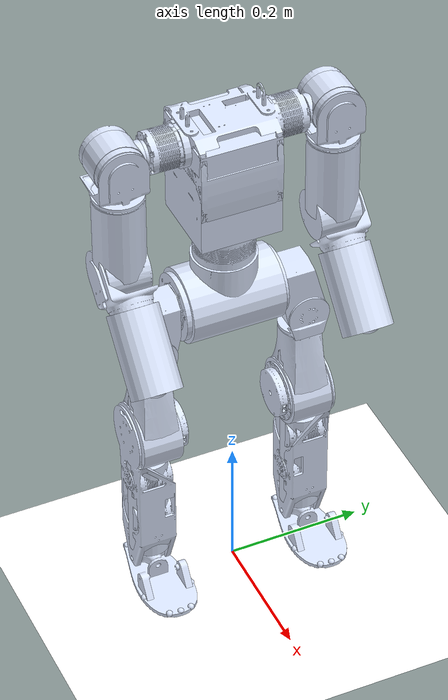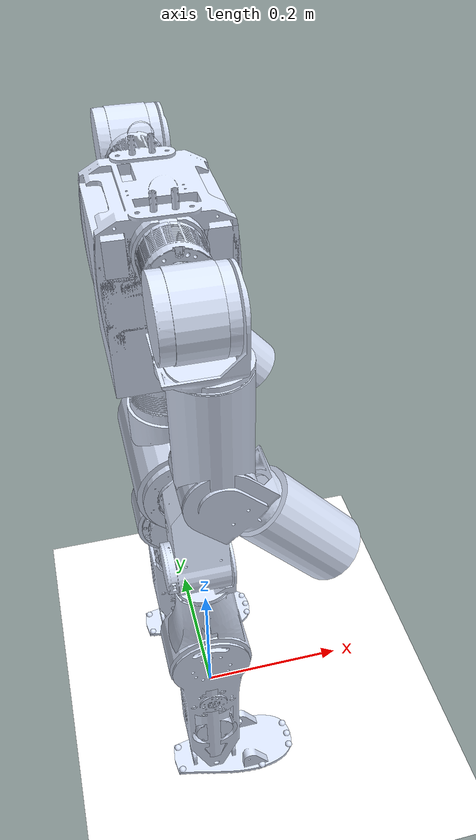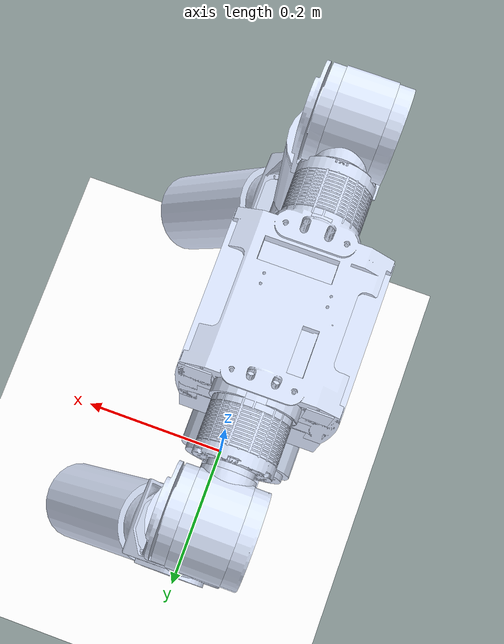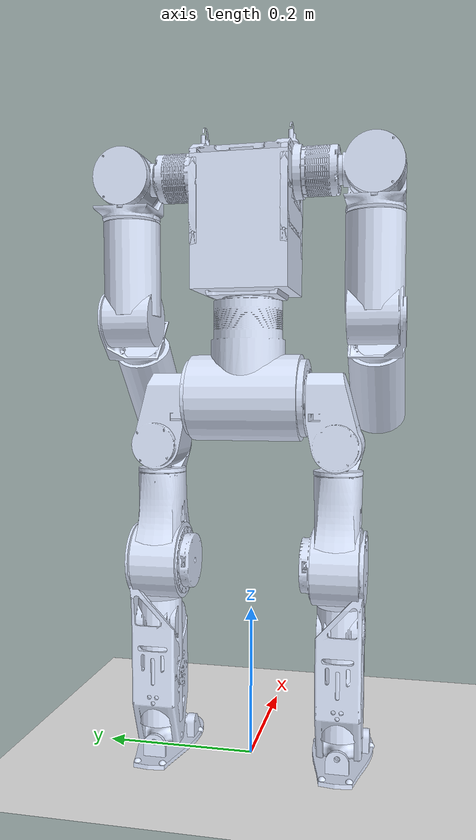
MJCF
<mujoco model="rotaku_xs3">
  <compiler angle="radian" meshdir="../meshes/"/>
  <default>
    <joint damping="0.0001" armature="0.001" frictionloss="0.001"/>
    <default class="collision">
      <geom group="0" rgba="0.2 0.7 0.2 1"/>
    </default>
    <geom condim='4' contype="1" conaffinity="15" solref='0.001 2' friction='1 0 0'/>
  </default>
  <asset>
    <mesh name="pelvis" file="pelvis.STL"/>
    <mesh name="left_hip_pitch_link" file="left_hip_pitch_link.STL"/>
    <mesh name="left_hip_roll_link" file="left_hip_roll_link.STL"/>
    <mesh name="left_hip_yaw_link" file="left_hip_yaw_link.STL"/>
    <mesh name="left_knee_link" file="left_knee_link.STL"/>
    <mesh name="left_ankle_pitch_link" file="left_ankle_pitch_link.STL"/>
    <mesh name="left_ankle_roll_link" file="left_ankle_roll_link.STL"/>
    <mesh name="right_hip_pitch_link" file="right_hip_pitch_link.STL"/>
    <mesh name="right_hip_roll_link" file="right_hip_roll_link.STL"/>
    <mesh name="right_hip_yaw_link" file="right_hip_yaw_link.STL"/>
    <mesh name="right_knee_link" file="right_knee_link.STL"/>
    <mesh name="right_ankle_pitch_link" file="right_ankle_pitch_link.STL"/>
    <mesh name="right_ankle_roll_link" file="right_ankle_roll_link.STL"/>
    <mesh name="torso_link" file="torso_link.STL"/>
    <mesh name="left_shoulder_pitch_link" file="left_shoulder_pitch_link.STL"/>
    <mesh name="left_shoulder_roll_link" file="left_shoulder_roll_link.STL"/>
    <mesh name="left_shoulder_yaw_link" file="left_shoulder_yaw_link.STL"/>
    <mesh name="left_elbow_pitch_link" file="left_elbow_pitch_link.STL"/>
    <mesh name="right_shoulder_pitch_link" file="right_shoulder_pitch_link.STL"/>
    <mesh name="right_shoulder_roll_link" file="right_shoulder_roll_link.STL"/>
    <mesh name="right_shoulder_yaw_link" file="right_shoulder_yaw_link.STL"/>
    <mesh name="right_elbow_pitch_link" file="right_elbow_pitch_link.STL"/>
  </asset>

  <worldbody>
    <body name="pelvis" pos="0 0 0.54">
      <inertial pos="-0.023899 -0.0008558 -0.033825" quat="1 -0.000436294 0.000749209 3.26875e-07" mass="3.4934" diaginertia="0.016599 0.011405 0.010259"/>
      <joint name="floating_base_joint" type="free"/>
      <geom type="mesh" contype="0" conaffinity="0" group="1" density="0" rgba="0.86667 0.9098 1 1" mesh="pelvis"/>
      <geom size="0.055 0.07" pos="-0.023986 0 -0.0589" quat="0.707107 0.707107 0 0" type="cylinder" rgba="0.86667 0.9098 1 1"/>
      <site name="imu" size="0.01" pos="0 0 0"/>
      <body name="left_hip_pitch_link" pos="-0.023986 0.077142 -0.0589">
        <inertial pos="-0.0023949 0.034614 -0.04848" quat="0.710053 0.110004 -0.0566108 0.693195" mass="0.7251" diaginertia="0.000811857 0.000762052 0.000453391"/>
        <joint name="left_hip_pitch_joint" pos="0 0 0" axis="0 1 0" range="-1.3 1.3" actuatorfrcrange="-30 30"/>
        <geom type="mesh" contype="0" conaffinity="0" group="1" density="0" rgba="0.86667 0.9098 1 1" mesh="left_hip_pitch_link"/>
        <geom size="0.02 0.025" pos="0 0.021 0" quat="0.707107 0 0.707107 0" type="cylinder" rgba="0.86667 0.9098 1 1"/>
        <geom size="0.03 0.025" pos="0 0.038 -0.060165" quat="0.707107 0 0.707107 0" type="cylinder" rgba="0.86667 0.9098 1 1"/>
        <body name="left_hip_roll_link" pos="0.0305 0.038 -0.06">
          <inertial pos="-0.014351 3.2e-06 -0.022065" quat="0 0.403965 0 0.914774" mass="0.076044" diaginertia="5.98602e-05 5.06e-05 3.17398e-05"/>
          <joint name="left_hip_roll_joint" pos="0 0 0" axis="1 0 0" range="-0.3 1.2" actuatorfrcrange="-32 32"/>
          <geom type="mesh" contype="0" conaffinity="0" group="1" density="0" rgba="0.86667 0.9098 1 1" mesh="left_hip_roll_link"/>
          <geom size="0.03 0.001" pos="-0.0295 0.00012455 -0.03625" type="cylinder" rgba="0.86667 0.9098 1 1"/>
          <body name="left_hip_yaw_link" pos="-0.0295 0 -0.03625">
            <inertial pos="0.0008347 0.0005241 -0.087465" quat="0.706849 0.0175848 0.010198 0.707072" mass="1.9052" diaginertia="0.00499455 0.00458521 0.00179294"/>
            <joint name="left_hip_yaw_joint" pos="0 0 0" axis="0 0 1" range="-1.5 1.5" actuatorfrcrange="-32 32"/>
            <geom type="mesh" contype="0" conaffinity="0" group="1" density="0" rgba="0.86667 0.9098 1 1" mesh="left_hip_yaw_link"/>
            <geom size="0.03 0.0275" pos="-0.00033095 0 -0.038" type="cylinder" rgba="0.86667 0.9098 1 1"/>
            <geom size="0.05 0.03" pos="-0.00033095 0 -0.118" quat="0.707107 0.707107 0 0" type="cylinder" rgba="0.86667 0.9098 1 1"/>
            <body name="left_knee_link" pos="-0.0007981 0.02925 -0.118">
              <inertial pos="0.0001773 -0.022134 -0.12275" quat="0.689884 -0.0487557 0.0506976 0.720495" mass="1.2923" diaginertia="0.00482754 0.00470026 0.000978103"/>
              <joint name="left_knee_joint" pos="0 0 0" axis="0 1 0" range="-1 1.2" actuatorfrcrange="-30 30"/>
              <geom type="mesh" contype="0" conaffinity="0" group="1" density="0" rgba="0.86667 0.9098 1 1" mesh="left_knee_link"/>
              <geom size="0.03 0.085" pos="-0.0013389 -0.0245 -0.135" type="cylinder" rgba="0.86667 0.9098 1 1"/>
              <body name="left_ankle_pitch_link" pos="0 -0.0245 -0.24">
                <inertial pos="0 0 0" quat="0 0.707107 0 0.707107" mass="0.056535" diaginertia="1.16e-05 9.3e-06 6.1e-06"/>
                <joint name="left_ankle_pitch_joint" pos="0 0 0" axis="0 1 0" range="-0.3 0.3" actuatorfrcrange="-25 25"/>
                <geom type="mesh" contype="0" conaffinity="0" group="1" density="0" rgba="0.86667 0.9098 1 1" mesh="left_ankle_pitch_link"/>
                <geom size="0.005 0.005 0.005" type="box" rgba="0.86667 0.9098 1 1"/>
                <body name="left_ankle_roll_link">
                  <inertial pos="0.033884 0 -0.018481" quat="0 0.70809 0 0.706123" mass="0.22328" diaginertia="0.000479203 0.00039 0.000119697"/>
                  <joint name="left_ankle_roll_joint" pos="0 0 0" axis="1 0 0" range="-0.3 0.3" actuatorfrcrange="-25 25"/>
                  <geom type="mesh" contype="0" conaffinity="0" group="1" density="0" rgba="0.86667 0.9098 1 1" mesh="left_ankle_roll_link"/>
                  <geom size="0.005" pos="-0.047 0.017 -0.021" rgba="0.86667 0.9098 1 1"/>
                  <geom size="0.005" pos="-0.047 -0.017 -0.021" rgba="0.86667 0.9098 1 1"/>
                  <geom size="0.005" pos="0.063 0.037 -0.021" rgba="0.86667 0.9098 1 1"/>
                  <geom size="0.005" pos="0.063 -0.037 -0.021" rgba="0.86667 0.9098 1 1"/>
                  <geom size="0.005" pos="0.108 0.017 -0.021" rgba="0.86667 0.9098 1 1"/>
                  <geom size="0.005" pos="0.108 -0.017 -0.021" rgba="0.86667 0.9098 1 1"/>
                  <geom size="0.005" pos="0.11 0 -0.021" rgba="0.86667 0.9098 1 1"/>
                </body>
              </body>
            </body>
          </body>
        </body>
      </body>
      <body name="right_hip_pitch_link" pos="-0.023986 -0.078858 -0.0589">
        <inertial pos="-0.0023949 -0.034614 -0.04848" quat="0.693195 -0.0566108 0.110004 0.710053" mass="0.7251" diaginertia="0.000811857 0.000762052 0.000453391"/>
        <joint name="right_hip_pitch_joint" pos="0 0 0" axis="0 1 0" range="-1.3 1.3" actuatorfrcrange="-30 30"/>
        <geom type="mesh" contype="0" conaffinity="0" group="1" density="0" rgba="0.86667 0.9098 1 1" mesh="right_hip_pitch_link"/>
        <geom size="0.02 0.025" pos="0 -0.021 0" quat="0.707107 0 0.707107 0" type="cylinder" rgba="0.86667 0.9098 1 1"/>
        <geom size="0.03 0.025" pos="0 -0.038 -0.060165" quat="0.707107 0 0.707107 0" type="cylinder" rgba="0.86667 0.9098 1 1"/>
        <body name="right_hip_roll_link" pos="0.0305 -0.038 -0.06">
          <inertial pos="-0.014351 -3.1e-06 -0.022065" quat="0 0.403965 0 0.914774" mass="0.076044" diaginertia="5.98602e-05 5.06e-05 3.17398e-05"/>
          <joint name="right_hip_roll_joint" pos="0 0 0" axis="1 0 0" range="-1.2 0.3" actuatorfrcrange="-32 32"/>
          <geom type="mesh" contype="0" conaffinity="0" group="1" density="0" rgba="0.86667 0.9098 1 1" mesh="right_hip_roll_link"/>
          <geom size="0.03 0.001" pos="-0.0295 -0.00012455 -0.03625" type="cylinder" rgba="0.86667 0.9098 1 1"/>
          <body name="right_hip_yaw_link" pos="-0.0295 0 -0.03625">
            <inertial pos="0.0008347 -0.0005241 -0.087465" quat="0.707072 0.010198 0.0175848 0.706849" mass="1.9052" diaginertia="0.00499455 0.00458521 0.00179294"/>
            <joint name="right_hip_yaw_joint" pos="0 0 0" axis="0 0 1" range="-1.5 1.5" actuatorfrcrange="-32 32"/>
            <geom type="mesh" contype="0" conaffinity="0" group="1" density="0" rgba="0.86667 0.9098 1 1" mesh="right_hip_yaw_link"/>
            <geom size="0.03 0.0275" pos="-0.00033095 0 -0.038" type="cylinder" rgba="0.86667 0.9098 1 1"/>
            <geom size="0.05 0.03" pos="-0.00033095 0 -0.118" quat="0.707107 0.707107 0 0" type="cylinder" rgba="0.86667 0.9098 1 1"/>
            <body name="right_knee_link" pos="-0.0007981 -0.02925 -0.118">
              <inertial pos="0.0001773 0.022134 -0.12275" quat="0.720495 0.0506976 -0.0487557 0.689884" mass="1.2923" diaginertia="0.00482754 0.00470026 0.000978103"/>
              <joint name="right_knee_joint" pos="0 0 0" axis="0 1 0" range="-1.2 1.2" actuatorfrcrange="-30 30"/>
              <geom type="mesh" contype="0" conaffinity="0" group="1" density="0" rgba="0.86667 0.9098 1 1" mesh="right_knee_link"/>
              <geom size="0.03 0.085" pos="-0.0013389 0.0245 -0.135" type="cylinder" rgba="0.86667 0.9098 1 1"/>
              <body name="right_ankle_pitch_link" pos="0 0.0245 -0.24">
                <inertial pos="0 0 0" quat="0 0.707107 0 0.707107" mass="0.056536" diaginertia="1.16e-05 9.3e-06 6.1e-06"/>
                <joint name="right_ankle_pitch_joint" pos="0 0 0" axis="0 1 0" range="-0.3 0.3" actuatorfrcrange="-25 25"/>
                <geom type="mesh" contype="0" conaffinity="0" group="1" density="0" rgba="0.86667 0.9098 1 1" mesh="right_ankle_pitch_link"/>
                <geom size="0.005 0.005 0.005" type="box" rgba="0.86667 0.9098 1 1"/>
                <body name="right_ankle_roll_link">
                  <inertial pos="0.033883 0 -0.018481" quat="0 0.70809 0 0.706122" mass="0.22328" diaginertia="0.000479103 0.00039 0.000119697"/>
                  <joint name="right_ankle_roll_joint" pos="0 0 0" axis="1 0 0" range="-0.3 0.3" actuatorfrcrange="-25 25"/>
                  <geom type="mesh" contype="0" conaffinity="0" group="1" density="0" rgba="0.86667 0.9098 1 1" mesh="right_ankle_roll_link"/>
                  <geom size="0.005" pos="-0.047 0.017 -0.021" rgba="0.86667 0.9098 1 1"/>
                  <geom size="0.005" pos="-0.047 -0.017 -0.021" rgba="0.86667 0.9098 1 1"/>
                  <geom size="0.005" pos="0.063 0.037 -0.021" rgba="0.86667 0.9098 1 1"/>
                  <geom size="0.005" pos="0.063 -0.037 -0.021" rgba="0.86667 0.9098 1 1"/>
                  <geom size="0.005" pos="0.108 0.017 -0.021" rgba="0.86667 0.9098 1 1"/>
                  <geom size="0.005" pos="0.108 -0.017 -0.021" rgba="0.86667 0.9098 1 1"/>
                  <geom size="0.005" pos="0.11 0 -0.021" rgba="0.86667 0.9098 1 1"/>
                </body>
              </body>
            </body>
          </body>
        </body>
      </body>
      <body name="torso_link" pos="-0.023986 -0.00085813 0.0676">
        <inertial pos="0.005307 0.0001953 0.1089" quat="0.701818 0.711682 -0.0222333 0.0215864" mass="3.1292" diaginertia="0.0176111 0.0131635 0.0102124"/>
        <joint name="waist_yaw" pos="0 0 0" axis="0 0 1" range="-2.5 2.5" actuatorfrcrange="-30 30"/>
        <geom type="mesh" contype="0" conaffinity="0" group="1" density="0" rgba="0.86667 0.9098 1 1" mesh="torso_link"/>
        <geom size="0.03 0.02" pos="0 0.085 0.152" quat="0.707107 0.707107 0 0" type="cylinder" rgba="0.86667 0.9098 1 1"/>
        <geom size="0.03 0.02" pos="0 -0.085 0.152" quat="0.707107 0.707107 0 0" type="cylinder" rgba="0.86667 0.9098 1 1"/>
        <geom size="0.06 0.06 0.08" pos="0 0 0.086" type="box" rgba="0.86667 0.9098 1 1"/>
        <body name="left_shoulder_pitch_link" pos="0 0.1192 0.152">
          <inertial pos="0.0049607 0.038287 -1.78e-05" quat="0.705048 0.707483 0.00189387 -0.0487021" mass="0.54541" diaginertia="0.000405881 0.000403086 0.000390734"/>
          <joint name="left_shoulder_pitch_joint" pos="0 0 0" axis="0 1 0" range="-2.5 2.5" actuatorfrcrange="-25 25"/>
          <geom type="mesh" contype="0" conaffinity="0" group="1" density="0" rgba="0.86667 0.9098 1 1" mesh="left_shoulder_pitch_link"/>
          <geom size="0.037 0.02" pos="0 0.039 0" quat="0.707107 0 0.707107 0" type="cylinder" rgba="0.86667 0.9098 1 1"/>
          <body name="left_shoulder_roll_link" pos="0.03225 0.039 0">
            <inertial pos="-0.01429 -1.41e-05 -0.025308" quat="0.932495 0 0.361182 0" mass="0.10456" diaginertia="0.000135696 0.0001125 6.7604e-05"/>
            <joint name="left_shoulder_roll_joint" pos="0 0 0" axis="1 0 0" range="-0.1 2.4" actuatorfrcrange="-25 25"/>
            <geom type="mesh" contype="0" conaffinity="0" group="1" density="0" rgba="0.86667 0.9098 1 1" mesh="left_shoulder_roll_link"/>
            <geom size="0.037 0.0025" pos="-0.02125 0 -0.046356" type="cylinder" rgba="0.86667 0.9098 1 1"/>
            <body name="left_shoulder_yaw_link" pos="-0.02125 0 -0.049">
              <inertial pos="0.000396 0.0023873 -0.0772433" quat="0.998882 0.0258997 -0.000111861 0.0395504" mass="1.1141" diaginertia="0.00347353 0.00347034 0.000833028"/>
              <joint name="left_shoulder_yaw_joint" pos="0 0 0" axis="0 0 1" range="-2.5 2.5" actuatorfrcrange="-25 25"/>
              <geom type="mesh" contype="0" conaffinity="0" group="1" density="0" rgba="0.86667 0.9098 1 1" mesh="left_shoulder_yaw_link"/>
              <geom size="0.037 0.06" pos="0 0 -0.063" type="cylinder" rgba="0.86667 0.9098 1 1"/>
              <body name="left_elbow_pitch_link" pos="0 0.03225 -0.127">
                <inertial pos="0.057348 -0.023445 -0.054893" quat="0.338472 0.671788 0.623117 0.214156" mass="0.22701" diaginertia="0.000854112 0.000852224 0.000151164"/>
                <joint name="left_elbow_pitch_joint" pos="0 0 0" axis="0 1 0" range="-0.82 2.32" actuatorfrcrange="-25 25"/>
                <geom type="mesh" contype="0" conaffinity="0" group="1" density="0" rgba="0.86667 0.9098 1 1" mesh="left_elbow_pitch_link"/>
                <geom size="0.037 0.06" pos="0.08 -0.032018 -0.083" quat="0.934124 0 -0.356949 0" type="cylinder" rgba="0.86667 0.9098 1 1"/>
              </body>
            </body>
          </body>
        </body>
        <body name="right_shoulder_pitch_link" pos="0 -0.1192 0.152">
          <inertial pos="-0.0094872 -0.038541 -1.07e-05" quat="-0.00937979 0.70683 0.00952543 0.707258" mass="0.9075" diaginertia="0.0008058 0.00079331 0.00063989"/>
          <joint name="right_shoulder_pitch_joint" pos="0 0 0" axis="0 1 0" range="-2.5 2.5" actuatorfrcrange="-25 25"/>
          <geom type="mesh" contype="0" conaffinity="0" group="1" density="0" rgba="0.86667 0.9098 1 1" mesh="right_shoulder_pitch_link"/>
          <geom size="0.037 0.02" pos="0 -0.039 0" quat="0.707107 0 0.707107 0" type="cylinder" rgba="0.86667 0.9098 1 1"/>
          <body name="right_shoulder_roll_link" pos="0.03225 -0.039 0">
            <inertial pos="-0.014293 1.3e-05 -0.025308" quat="0.932495 0 0.361182 0" mass="0.10457" diaginertia="0.000135696 0.0001125 6.7604e-05"/>
            <joint name="right_shoulder_roll_joint" pos="0 0 0" axis="1 0 0" range="-2.4 0.1" actuatorfrcrange="-25 25"/>
            <geom type="mesh" contype="0" conaffinity="0" group="1" density="0" rgba="0.86667 0.9098 1 1" mesh="right_shoulder_roll_link"/>
            <geom size="0.037 0.0025" pos="-0.02125 0 -0.046356" type="cylinder" rgba="0.86667 0.9098 1 1"/>
            <body name="right_shoulder_yaw_link" pos="-0.02125 0 -0.049">
              <inertial pos="0.0003174 0.0058636 -0.089448" quat="0.998691 0.0509181 0.00117239 0.00463871" mass="1.4762" diaginertia="0.00457634 0.0044067 0.00123366"/>
              <joint name="right_shoulder_yaw_joint" pos="0 0 0" axis="0 0 1" range="-2.5 2.5" actuatorfrcrange="-25 25"/>
              <geom type="mesh" contype="0" conaffinity="0" group="1" density="0" rgba="0.86667 0.9098 1 1" mesh="right_shoulder_yaw_link"/>
              <geom size="0.037 0.06" pos="0 0 -0.063" type="cylinder" rgba="0.86667 0.9098 1 1"/>
              <body name="right_elbow_pitch_link" pos="0 -0.03225 -0.127">
                <inertial pos="0.057345 0.023446 -0.05489" quat="0.214983 0.621448 0.673351 0.337909" mass="0.22702" diaginertia="0.00085421 0.000852272 0.000151218"/>
                <joint name="right_elbow_pitch_joint" pos="0 0 0" axis="0 -1 0" range="-2.32 0.82" actuatorfrcrange="-36 36"/>
                <geom type="mesh" contype="0" conaffinity="0" group="1" density="0" rgba="0.86667 0.9098 1 1" mesh="right_elbow_pitch_link"/>
                <geom size="0.037 0.06" pos="0.08 0.032018 -0.083" quat="0.934124 0 -0.356949 0" type="cylinder" rgba="0.86667 0.9098 1 1"/>
              </body>
            </body>
          </body>
        </body>
      </body>
    </body>
  </worldbody>

  <actuator>
    <motor name="left_hip_pitch_joint" joint="left_hip_pitch_joint" ctrlrange="-30 30"/>
    <motor name="left_hip_roll_joint" joint="left_hip_roll_joint" ctrlrange="-32 32"/>
    <motor name="left_hip_yaw_joint" joint="left_hip_yaw_joint" ctrlrange="-32 32"/>
    <motor name="left_knee_joint" joint="left_knee_joint" ctrlrange="-30 30"/>
    <motor name="left_ankle_pitch_joint" joint="left_ankle_pitch_joint" ctrlrange="-25 25"/>
    <motor name="left_ankle_roll_joint" joint="left_ankle_roll_joint" ctrlrange="-25 25"/>

    <motor name="right_hip_pitch_joint" joint="right_hip_pitch_joint" ctrlrange="-30 30"/>
    <motor name="right_hip_roll_joint" joint="right_hip_roll_joint" ctrlrange="-32 32"/>
    <motor name="right_hip_yaw_joint" joint="right_hip_yaw_joint" ctrlrange="-32 32"/>
    <motor name="right_knee_joint" joint="right_knee_joint" ctrlrange="-30 30"/>
    <motor name="right_ankle_pitch_joint" joint="right_ankle_pitch_joint" ctrlrange="-25 25"/>
    <motor name="right_ankle_roll_joint" joint="right_ankle_roll_joint" ctrlrange="-25 25"/>

    <motor name="waist_yaw" joint="waist_yaw" ctrlrange="-70 70"/>

    <motor name="left_shoulder_pitch_joint" joint="left_shoulder_pitch_joint" ctrlrange="-25 25"/>
    <motor name="left_shoulder_roll_joint" joint="left_shoulder_roll_joint" ctrlrange="-25 25"/>
    <motor name="left_shoulder_yaw_joint" joint="left_shoulder_yaw_joint" ctrlrange="-25 25"/>
    <motor name="left_elbow_pitch_joint" joint="left_elbow_pitch_joint" ctrlrange="-25 25"/>

    <motor name="right_shoulder_pitch_joint" joint="right_shoulder_pitch_joint" ctrlrange="-25 25"/>
    <motor name="right_shoulder_roll_joint" joint="right_shoulder_roll_joint" ctrlrange="-25 25"/>
    <motor name="right_shoulder_yaw_joint" joint="right_shoulder_yaw_joint" ctrlrange="-25 25"/>
    <motor name="right_elbow_pitch_joint" joint="right_elbow_pitch_joint" ctrlrange="-25 25"/>
  </actuator>

  <sensor>
    <gyro name="imu-angular-velocity" site="imu" noise="5e-4" cutoff="34.9"/>
    <accelerometer name="imu-linear-acceleration" site="imu" noise="1e-2" cutoff="157"/>
  </sensor>
  <!-- setup scene -->
  <statistic center="1.0 0.7 1.0" extent="0.8" />
  <visual>
    <headlight diffuse="0.6 0.6 0.6" ambient="0.1 0.1 0.1" specular="0.9 0.9 0.9" />
    <rgba haze="0.15 0.25 0.35 1" />
    <global azimuth="-140" elevation="-20" offwidth="2080" offheight="1170" />
  </visual>
  <asset>
    <texture type="skybox" builtin="gradient" rgb1="1 1 1" rgb2="1 1 1" width="800" height="800" />
    <texture type="2d" name="groundplane" builtin="checker" mark="edge" rgb1="1 1 1" rgb2="1 1 1" markrgb="0 0 0" width="300" height="300" />
    <material name="groundplane" texture="groundplane" texuniform="true" texrepeat="5 5" reflectance="0" />
    <texture type="skybox" builtin="gradient" rgb1=".4 .5 .6" rgb2="0 0 0" width="100" height="100" />
    <texture builtin="flat" height="1278" mark="cross" markrgb="1 1 1" name="texgeom" random="0.01" rgb1="0.8 0.6 0.4" rgb2="0.8 0.6 0.4" type="cube" width="127" />
    <texture name="texplane" builtin="checker" height="512" width="512" rgb1=".2 .3 .4" rgb2=".1 .15 .2" type="2d" />
    <material name="MatPlane" reflectance="0.5" shininess="0.01" specular="0.1" texrepeat="1 1" texture="texplane" texuniform="true" />
    <material name="geom" texture="texgeom" texuniform="true" />
  </asset>
  <worldbody>
    <geom name="floor" size="0 0 0.01" type="plane" material="groundplane" contype="1" conaffinity="0" priority="1" friction="0.6" condim="3" />
    <light diffuse=".5 .5 .5" pos="-3 -3 5" dir="3 3 -5" castshadow="true" />
  </worldbody>
</mujoco>
